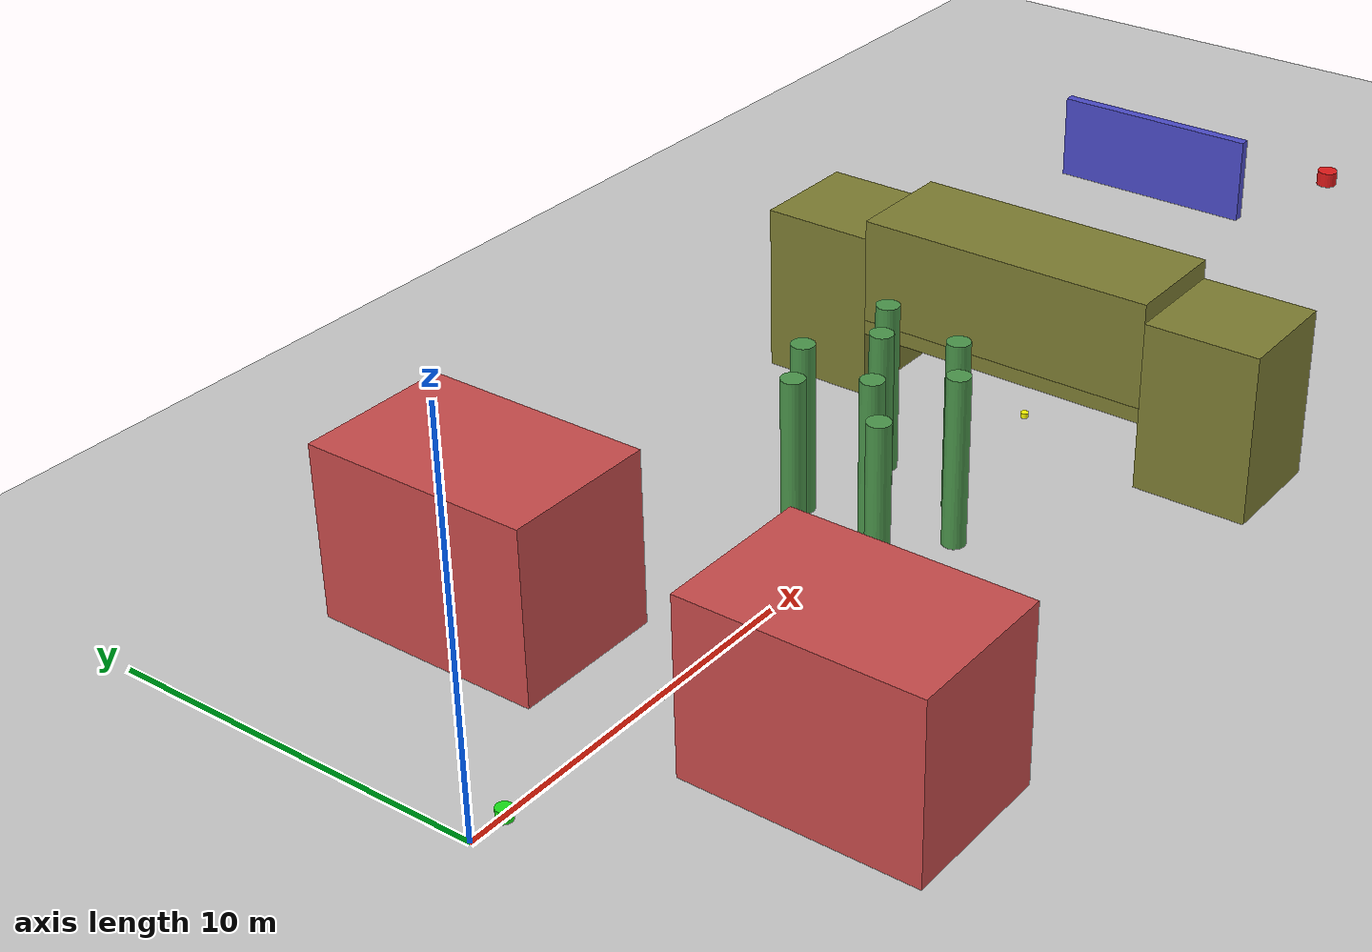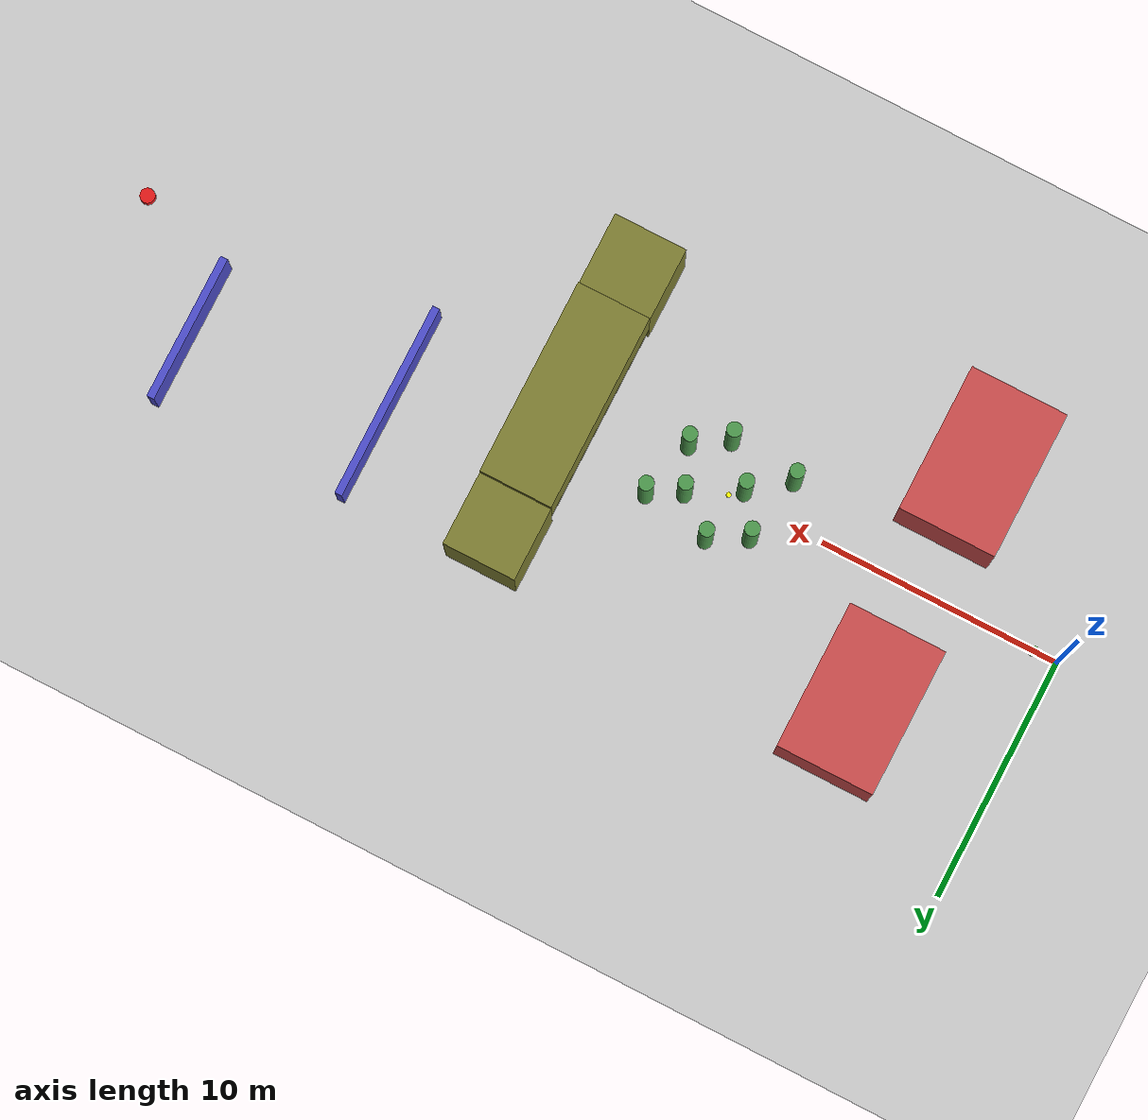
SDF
<?xml version="1.0" ?>
<sdf version="1.6">
  <world name="obstacle_course">

    <physics type="ode">
      <max_step_size>0.001</max_step_size>
      <real_time_factor>1.0</real_time_factor>
      <real_time_update_rate>1000</real_time_update_rate>
      <gravity>0 0 -9.81</gravity>
      <ode>
        <solver><type>quick</type><iters>50</iters><sor>1.3</sor></solver>
        <constraints>
          <cfm>0.0</cfm><erp>0.2</erp>
          <contact_max_correcting_vel>100.0</contact_max_correcting_vel>
          <contact_surface_layer>0.001</contact_surface_layer>
        </constraints>
      </ode>
    </physics>

    <scene>
      <ambient>0.5 0.5 0.5 1.0</ambient>
      <shadows>false</shadows>
      <grid>false</grid>
    </scene>

    <include><uri>model://sun</uri></include>
    <include><uri>model://ground_plane</uri></include>

    <!-- Zone 1: Narrow Gap (x=4~8) - 高牆留窄縫                       -->
    <!-- 兩面牆 4.5m 高，中間留 2.0m 通道 (y=-1 to y=1)                  -->
    <model name="z1_wall_left">
      <static>true</static>
      <pose>6 -5.0 2.25 0 0 0</pose>
      <link name="link">
        <collision name="c"><geometry><box><size>4.0 6.0 4.5</size></box></geometry></collision>
        <visual name="v"><geometry><box><size>4.0 6.0 4.5</size></box></geometry>
          <material><ambient>0.8 0.3 0.3 1</ambient><diffuse>0.8 0.3 0.3 1</diffuse></material></visual>
      </link>
    </model>
    <model name="z1_wall_right">
      <static>true</static>
      <pose>6 5.0 2.25 0 0 0</pose>
      <link name="link">
        <collision name="c"><geometry><box><size>4.0 6.0 4.5</size></box></geometry></collision>
        <visual name="v"><geometry><box><size>4.0 6.0 4.5</size></box></geometry>
          <material><ambient>0.8 0.3 0.3 1</ambient><diffuse>0.8 0.3 0.3 1</diffuse></material></visual>
      </link>
    </model>

    <!-- Zone 2: Forest (x=11~17) - 8 根圓柱，直徑 0.6m，高 4.5m         -->
    <!-- 間距約 1.5~2.0m，需要精確穿越                                    -->
    <model name="z2_pillar_1"><static>true</static><pose>12.0 -1.5 2.25 0 0 0</pose>
      <link name="link">
        <collision name="c"><geometry><cylinder><radius>0.3</radius><length>4.5</length></cylinder></geometry></collision>
        <visual name="v"><geometry><cylinder><radius>0.3</radius><length>4.5</length></cylinder></geometry>
          <material><ambient>0.3 0.6 0.3 1</ambient><diffuse>0.3 0.6 0.3 1</diffuse></material></visual>
      </link></model>

    <model name="z2_pillar_2"><static>true</static><pose>12.5 1.2 2.25 0 0 0</pose>
      <link name="link">
        <collision name="c"><geometry><cylinder><radius>0.3</radius><length>4.5</length></cylinder></geometry></collision>
        <visual name="v"><geometry><cylinder><radius>0.3</radius><length>4.5</length></cylinder></geometry>
          <material><ambient>0.3 0.6 0.3 1</ambient><diffuse>0.3 0.6 0.3 1</diffuse></material></visual>
      </link></model>

    <model name="z2_pillar_3"><static>true</static><pose>13.5 -0.3 2.25 0 0 0</pose>
      <link name="link">
        <collision name="c"><geometry><cylinder><radius>0.3</radius><length>4.5</length></cylinder></geometry></collision>
        <visual name="v"><geometry><cylinder><radius>0.3</radius><length>4.5</length></cylinder></geometry>
          <material><ambient>0.3 0.6 0.3 1</ambient><diffuse>0.3 0.6 0.3 1</diffuse></material></visual>
      </link></model>

    <model name="z2_pillar_4"><static>true</static><pose>14.0 2.0 2.25 0 0 0</pose>
      <link name="link">
        <collision name="c"><geometry><cylinder><radius>0.3</radius><length>4.5</length></cylinder></geometry></collision>
        <visual name="v"><geometry><cylinder><radius>0.3</radius><length>4.5</length></cylinder></geometry>
          <material><ambient>0.3 0.6 0.3 1</ambient><diffuse>0.3 0.6 0.3 1</diffuse></material></visual>
      </link></model>

    <model name="z2_pillar_5"><static>true</static><pose>14.8 -1.8 2.25 0 0 0</pose>
      <link name="link">
        <collision name="c"><geometry><cylinder><radius>0.3</radius><length>4.5</length></cylinder></geometry></collision>
        <visual name="v"><geometry><cylinder><radius>0.3</radius><length>4.5</length></cylinder></geometry>
          <material><ambient>0.3 0.6 0.3 1</ambient><diffuse>0.3 0.6 0.3 1</diffuse></material></visual>
      </link></model>

    <model name="z2_pillar_6"><static>true</static><pose>15.5 0.8 2.25 0 0 0</pose>
      <link name="link">
        <collision name="c"><geometry><cylinder><radius>0.3</radius><length>4.5</length></cylinder></geometry></collision>
        <visual name="v"><geometry><cylinder><radius>0.3</radius><length>4.5</length></cylinder></geometry>
          <material><ambient>0.3 0.6 0.3 1</ambient><diffuse>0.3 0.6 0.3 1</diffuse></material></visual>
      </link></model>

    <model name="z2_pillar_7"><static>true</static><pose>16.2 -0.9 2.25 0 0 0</pose>
      <link name="link">
        <collision name="c"><geometry><cylinder><radius>0.3</radius><length>4.5</length></cylinder></geometry></collision>
        <visual name="v"><geometry><cylinder><radius>0.3</radius><length>4.5</length></cylinder></geometry>
          <material><ambient>0.3 0.6 0.3 1</ambient><diffuse>0.3 0.6 0.3 1</diffuse></material></visual>
      </link></model>

    <model name="z2_pillar_8"><static>true</static><pose>16.8 1.5 2.25 0 0 0</pose>
      <link name="link">
        <collision name="c"><geometry><cylinder><radius>0.3</radius><length>4.5</length></cylinder></geometry></collision>
        <visual name="v"><geometry><cylinder><radius>0.3</radius><length>4.5</length></cylinder></geometry>
          <material><ambient>0.3 0.6 0.3 1</ambient><diffuse>0.3 0.6 0.3 1</diffuse></material></visual>
      </link></model>

    <!-- Zone 3: Low Bridge (x=20~22) - 必須從下方通過                   -->
    <!-- 橋面底部 z=1.8m，上方有頂板到 4.8m，兩側有柱子                    -->
    <!-- 無人機必須降低高度穿過 (z < 1.6m 左右)                           -->
    <!-- Bridge deck: 底面在 z=1.8, 厚 0.4m → 中心 z=2.0 -->
    <model name="z3_bridge_deck">
      <static>true</static>
      <pose>21 0 2.0 0 0 0</pose>
      <link name="link">
        <collision name="c"><geometry><box><size>3.0 8.0 0.4</size></box></geometry></collision>
        <visual name="v"><geometry><box><size>3.0 8.0 0.4</size></box></geometry>
          <material><ambient>0.5 0.5 0.2 1</ambient><diffuse>0.5 0.5 0.2 1</diffuse></material></visual>
      </link>
    </model>
    <!-- Bridge upper wall: 填滿橋面以上空間，防止從上面飛過 -->
    <model name="z3_bridge_upper">
      <static>true</static>
      <pose>21 0 3.6 0 0 0</pose>
      <link name="link">
        <collision name="c"><geometry><box><size>3.0 8.0 2.8</size></box></geometry></collision>
        <visual name="v"><geometry><box><size>3.0 8.0 2.8</size></box></geometry>
          <material><ambient>0.5 0.5 0.2 1</ambient><diffuse>0.5 0.5 0.2 1</diffuse></material></visual>
      </link>
    </model>
    <!-- Bridge side walls: 防止從兩側繞過 -->
    <model name="z3_side_left">
      <static>true</static>
      <pose>21 -5.5 2.25 0 0 0</pose>
      <link name="link">
        <collision name="c"><geometry><box><size>3.0 3.0 4.5</size></box></geometry></collision>
        <visual name="v"><geometry><box><size>3.0 3.0 4.5</size></box></geometry>
          <material><ambient>0.5 0.5 0.2 1</ambient><diffuse>0.5 0.5 0.2 1</diffuse></material></visual>
      </link>
    </model>
    <model name="z3_side_right">
      <static>true</static>
      <pose>21 5.5 2.25 0 0 0</pose>
      <link name="link">
        <collision name="c"><geometry><box><size>3.0 3.0 4.5</size></box></geometry></collision>
        <visual name="v"><geometry><box><size>3.0 3.0 4.5</size></box></geometry>
          <material><ambient>0.5 0.5 0.2 1</ambient><diffuse>0.5 0.5 0.2 1</diffuse></material></visual>
      </link>
    </model>

    <!-- Zone 4: Staggered Walls (x=26~36) - 錯位擋板                   -->
    <!-- 設計原則：                                                      -->
    <!--   - 深度相機 2.9m → 無人機看到牆時只剩 2.9m 反應距離             -->
    <!--   - 兩面牆的通道都在左邊 (y < 0)，但位置不同                     -->
    <!--   - 牆 1 通道 y ∈ [-4, -1]，牆 2 通道 y ∈ [-2, 1]              -->
    <!--   - 橫移量只有 2m，而且是同方向微調                              -->
    <!--   - 牆間距 8m > 2×2.9m，穿過牆 1 後有足夠距離發現牆 2           -->
    <!-- Wall 1 at x=27: 擋住 y > -1 那側 -->
    <!-- Wall spans y=-1 to y=7 (8m), opening: y=-4 to y=-1 (3m wide) -->
    <model name="z4_wall_1">
      <static>true</static>
      <pose>27 3.0 1.25 0 0 0</pose>
      <link name="link">
        <collision name="c"><geometry><box><size>0.3 8.0 2.5</size></box></geometry></collision>
        <visual name="v"><geometry><box><size>0.3 8.0 2.5</size></box></geometry>
          <material><ambient>0.3 0.3 0.8 1</ambient><diffuse>0.3 0.3 0.8 1</diffuse></material></visual>
      </link>
    </model>

    <!-- Wall 2 at x=35: 擋住 y > 1 那側，通道偏右 2m -->
    <!-- Wall spans y=1 to y=7 (6m), opening: y=-2 to y=1 (3m wide) -->
    <model name="z4_wall_2">
      <static>true</static>
      <pose>35 4.0 1.25 0 0 0</pose>
      <link name="link">
        <collision name="c"><geometry><box><size>0.3 6.0 2.5</size></box></geometry></collision>
        <visual name="v"><geometry><box><size>0.3 6.0 2.5</size></box></geometry>
          <material><ambient>0.3 0.3 0.8 1</ambient><diffuse>0.3 0.3 0.8 1</diffuse></material></visual>
      </link>
    </model>

    <!-- Markers                                                       -->
    <model name="marker_start"><static>true</static><pose>1 0 0 0 0 0</pose>
      <link name="link">
        <collision name="c"><geometry><cylinder><radius>0.2</radius><length>0.5</length></cylinder></geometry></collision>
        <visual name="v"><geometry><cylinder><radius>0.2</radius><length>0.5</length></cylinder></geometry>
          <material><ambient>0.1 0.9 0.1 1</ambient><diffuse>0.1 0.9 0.1 1</diffuse></material></visual>
      </link></model>

    <model name="marker_z1"><static>true</static><pose>6 0 0 0 0 0</pose>
      <link name="link">
        <visual name="v"><geometry><cylinder><radius>0.1</radius><length>0.2</length></cylinder></geometry>
          <material><ambient>1 1 0 1</ambient><diffuse>1 1 0 1</diffuse></material></visual>
      </link></model>

    <model name="marker_z2"><static>true</static><pose>14 0 0 0 0 0</pose>
      <link name="link">
        <visual name="v"><geometry><cylinder><radius>0.1</radius><length>0.2</length></cylinder></geometry>
          <material><ambient>1 1 0 1</ambient><diffuse>1 1 0 1</diffuse></material></visual>
      </link></model>

    <model name="marker_z3"><static>true</static><pose>21 0 0 0 0 0</pose>
      <link name="link">
        <visual name="v"><geometry><cylinder><radius>0.1</radius><length>0.2</length></cylinder></geometry>
          <material><ambient>1 1 0 1</ambient><diffuse>1 1 0 1</diffuse></material></visual>
      </link></model>

    <model name="marker_goal"><static>true</static><pose>39 0 0 0 0 0</pose>
      <link name="link">
        <collision name="c"><geometry><cylinder><radius>0.3</radius><length>0.8</length></cylinder></geometry></collision>
        <visual name="v"><geometry><cylinder><radius>0.3</radius><length>0.8</length></cylinder></geometry>
          <material><ambient>0.9 0.1 0.1 1</ambient><diffuse>0.9 0.1 0.1 1</diffuse></material></visual>
      </link></model>

  </world>
</sdf>
